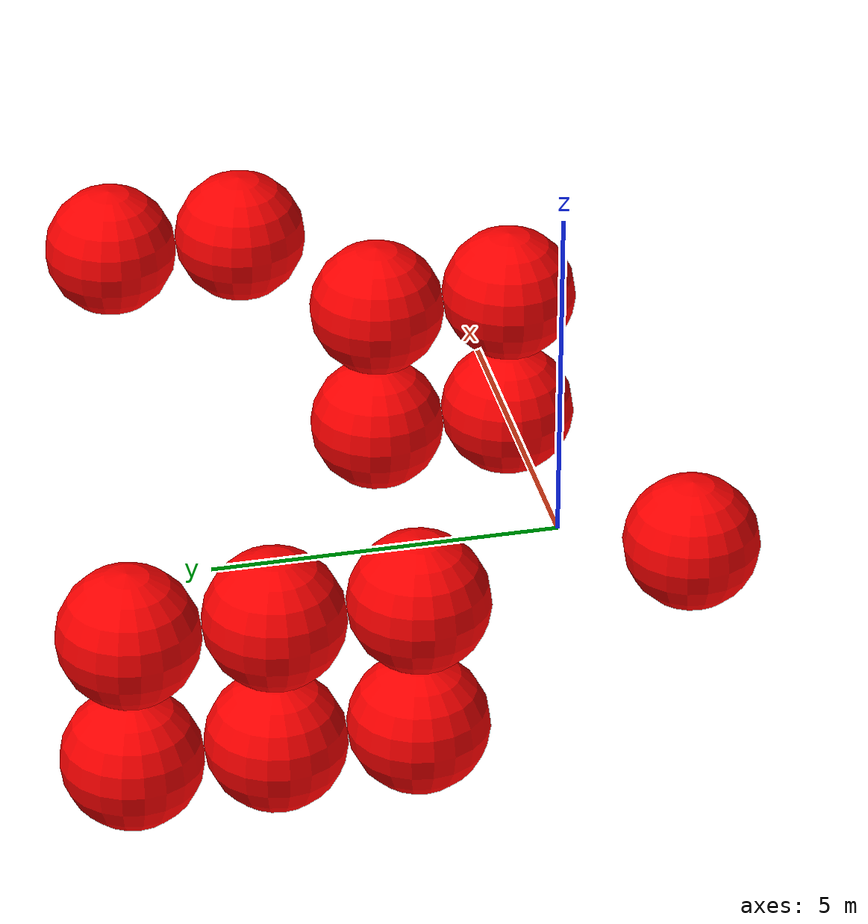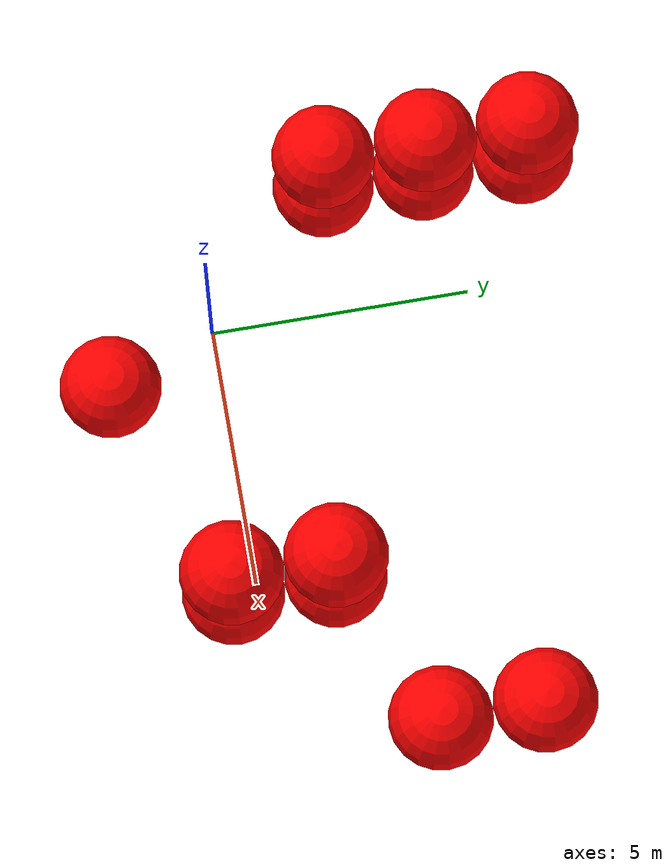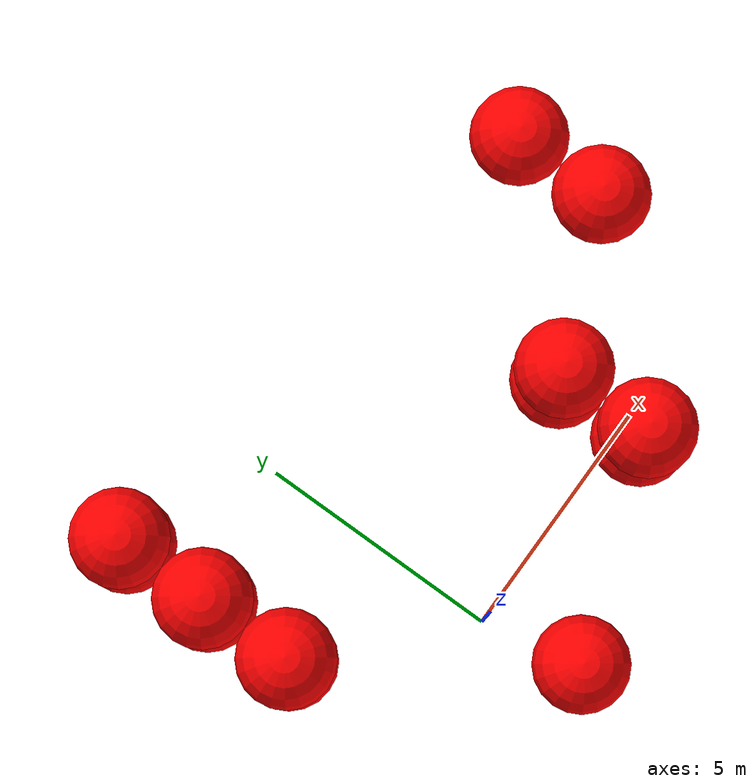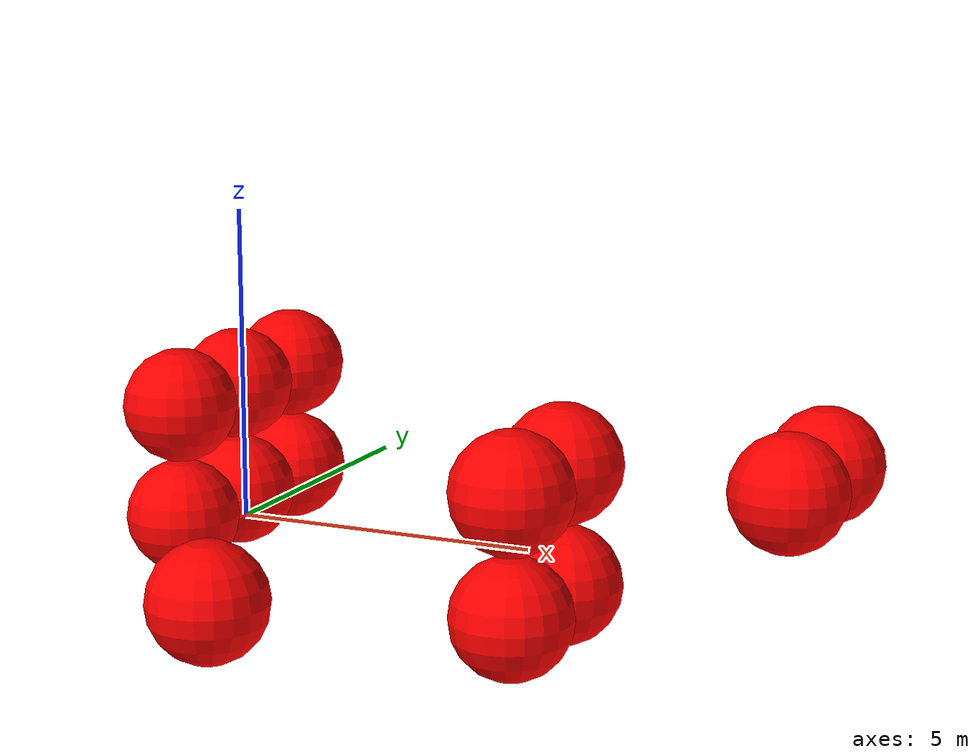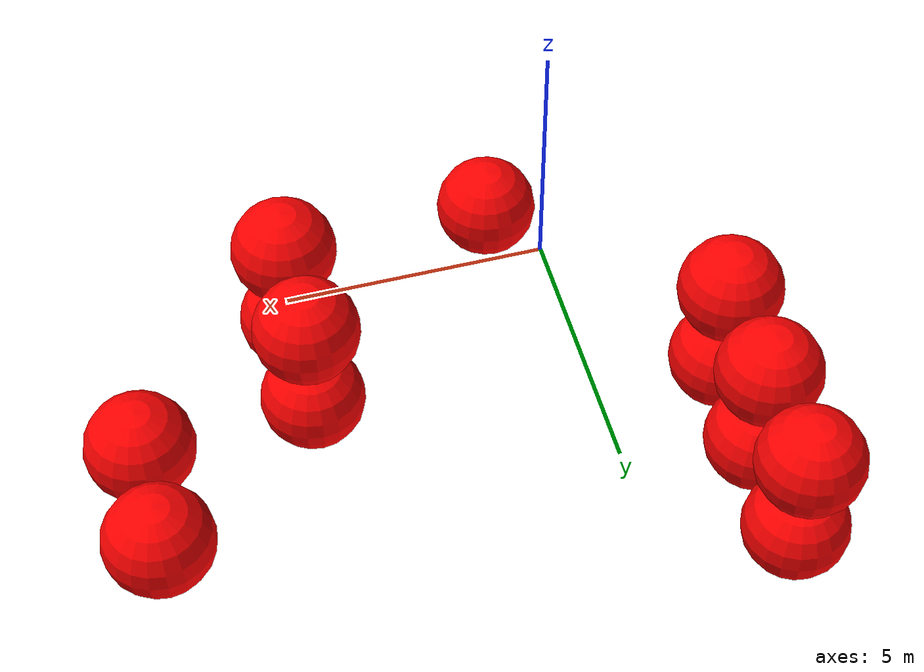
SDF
<sdf version="1.8">
 <world name="3d_world">
  <model name="obstacle_7" canonical_link="obstacle">
   <static>true</static>
   <pose relative_to="world">-2.85 2.66 -1.00 0 0 0</pose>
   <link name="obstacle">
    <pose relative_to="__model__">0.0 0 0.0 0 0 0</pose>
    <visual name="visual">
     <geometry><sphere><radius>1.00</radius></sphere></geometry>
     <material>
      <ambient>1.0 0.0 0.0 1</ambient>
      <diffuse>1.0 0.0 0.0 1</diffuse>
      <specular>1.0 0.0 0.0 1</specular>
     </material>
    </visual>
    <collision name="collision"><geometry><sphere><radius>1.00</radius></sphere></geometry></collision>
    <enable_gravity>false</enable_gravity>
   </link>
   <plugin filename="ignition-gazebo-velocity-control-system" name="ignition::gazebo::systems::VelocityControl">
    <initial_linear>0.00 0.00 0.00</initial_linear>
    <initial_angular>0 0 0</initial_angular>
   </plugin>
   <plugin filename="ignition-gazebo-odometry-publisher-system" name="ignition::gazebo::systems::OdometryPublisher">
    <dimensions>3</dimensions>
   </plugin>
  </model>
  <model name="obstacle_8" canonical_link="obstacle">
   <static>true</static>
   <pose relative_to="world">-2.85 4.66 -1.00 0 0 0</pose>
   <link name="obstacle">
    <pose relative_to="__model__">0.0 0 0.0 0 0 0</pose>
    <visual name="visual">
     <geometry><sphere><radius>1.00</radius></sphere></geometry>
     <material>
      <ambient>1.0 0.0 0.0 1</ambient>
      <diffuse>1.0 0.0 0.0 1</diffuse>
      <specular>1.0 0.0 0.0 1</specular>
     </material>
    </visual>
    <collision name="collision"><geometry><sphere><radius>1.00</radius></sphere></geometry></collision>
    <enable_gravity>false</enable_gravity>
   </link>
   <plugin filename="ignition-gazebo-velocity-control-system" name="ignition::gazebo::systems::VelocityControl">
    <initial_linear>0.00 0.00 0.00</initial_linear>
    <initial_angular>0 0 0</initial_angular>
   </plugin>
   <plugin filename="ignition-gazebo-odometry-publisher-system" name="ignition::gazebo::systems::OdometryPublisher">
    <dimensions>3</dimensions>
   </plugin>
  </model>
  <model name="obstacle_9" canonical_link="obstacle">
   <static>true</static>
   <pose relative_to="world">-2.85 6.66 -1.00 0 0 0</pose>
   <link name="obstacle">
    <pose relative_to="__model__">0.0 0 0.0 0 0 0</pose>
    <visual name="visual">
     <geometry><sphere><radius>1.00</radius></sphere></geometry>
     <material>
      <ambient>1.0 0.0 0.0 1</ambient>
      <diffuse>1.0 0.0 0.0 1</diffuse>
      <specular>1.0 0.0 0.0 1</specular>
     </material>
    </visual>
    <collision name="collision"><geometry><sphere><radius>1.00</radius></sphere></geometry></collision>
    <enable_gravity>false</enable_gravity>
   </link>
   <plugin filename="ignition-gazebo-velocity-control-system" name="ignition::gazebo::systems::VelocityControl">
    <initial_linear>0.00 0.00 0.00</initial_linear>
    <initial_angular>0 0 0</initial_angular>
   </plugin>
   <plugin filename="ignition-gazebo-odometry-publisher-system" name="ignition::gazebo::systems::OdometryPublisher">
    <dimensions>3</dimensions>
   </plugin>
  </model>
  <model name="obstacle_10" canonical_link="obstacle">
   <static>true</static>
   <pose relative_to="world">-2.85 2.66 1.00 0 0 0</pose>
   <link name="obstacle">
    <pose relative_to="__model__">0.0 0 0.0 0 0 0</pose>
    <visual name="visual">
     <geometry><sphere><radius>1.00</radius></sphere></geometry>
     <material>
      <ambient>1.0 0.0 0.0 1</ambient>
      <diffuse>1.0 0.0 0.0 1</diffuse>
      <specular>1.0 0.0 0.0 1</specular>
     </material>
    </visual>
    <collision name="collision"><geometry><sphere><radius>1.00</radius></sphere></geometry></collision>
    <enable_gravity>false</enable_gravity>
   </link>
   <plugin filename="ignition-gazebo-velocity-control-system" name="ignition::gazebo::systems::VelocityControl">
    <initial_linear>0.00 0.00 0.00</initial_linear>
    <initial_angular>0 0 0</initial_angular>
   </plugin>
   <plugin filename="ignition-gazebo-odometry-publisher-system" name="ignition::gazebo::systems::OdometryPublisher">
    <dimensions>3</dimensions>
   </plugin>
  </model>
  <model name="obstacle_11" canonical_link="obstacle">
   <static>true</static>
   <pose relative_to="world">-2.85 4.66 1.00 0 0 0</pose>
   <link name="obstacle">
    <pose relative_to="__model__">0.0 0 0.0 0 0 0</pose>
    <visual name="visual">
     <geometry><sphere><radius>1.00</radius></sphere></geometry>
     <material>
      <ambient>1.0 0.0 0.0 1</ambient>
      <diffuse>1.0 0.0 0.0 1</diffuse>
      <specular>1.0 0.0 0.0 1</specular>
     </material>
    </visual>
    <collision name="collision"><geometry><sphere><radius>1.00</radius></sphere></geometry></collision>
    <enable_gravity>false</enable_gravity>
   </link>
   <plugin filename="ignition-gazebo-velocity-control-system" name="ignition::gazebo::systems::VelocityControl">
    <initial_linear>0.00 0.00 0.00</initial_linear>
    <initial_angular>0 0 0</initial_angular>
   </plugin>
   <plugin filename="ignition-gazebo-odometry-publisher-system" name="ignition::gazebo::systems::OdometryPublisher">
    <dimensions>3</dimensions>
   </plugin>
  </model>
  <model name="obstacle_12" canonical_link="obstacle">
   <static>true</static>
   <pose relative_to="world">-2.85 6.66 1.00 0 0 0</pose>
   <link name="obstacle">
    <pose relative_to="__model__">0.0 0 0.0 0 0 0</pose>
    <visual name="visual">
     <geometry><sphere><radius>1.00</radius></sphere></geometry>
     <material>
      <ambient>1.0 0.0 0.0 1</ambient>
      <diffuse>1.0 0.0 0.0 1</diffuse>
      <specular>1.0 0.0 0.0 1</specular>
     </material>
    </visual>
    <collision name="collision"><geometry><sphere><radius>1.00</radius></sphere></geometry></collision>
    <enable_gravity>false</enable_gravity>
   </link>
   <plugin filename="ignition-gazebo-velocity-control-system" name="ignition::gazebo::systems::VelocityControl">
    <initial_linear>0.00 0.00 0.00</initial_linear>
    <initial_angular>0 0 0</initial_angular>
   </plugin>
   <plugin filename="ignition-gazebo-odometry-publisher-system" name="ignition::gazebo::systems::OdometryPublisher">
    <dimensions>3</dimensions>
   </plugin>
  </model>
  <model name="obstacle_13" canonical_link="obstacle">
   <static>true</static>
   <pose relative_to="world">4.91 -0.43 -1.00 0 0 0</pose>
   <link name="obstacle">
    <pose relative_to="__model__">0.0 0 0.0 0 0 0</pose>
    <visual name="visual">
     <geometry><sphere><radius>1.00</radius></sphere></geometry>
     <material>
      <ambient>1.0 0.0 0.0 1</ambient>
      <diffuse>1.0 0.0 0.0 1</diffuse>
      <specular>1.0 0.0 0.0 1</specular>
     </material>
    </visual>
    <collision name="collision"><geometry><sphere><radius>1.00</radius></sphere></geometry></collision>
    <enable_gravity>false</enable_gravity>
   </link>
   <plugin filename="ignition-gazebo-velocity-control-system" name="ignition::gazebo::systems::VelocityControl">
    <initial_linear>0.00 0.00 0.00</initial_linear>
    <initial_angular>0 0 0</initial_angular>
   </plugin>
   <plugin filename="ignition-gazebo-odometry-publisher-system" name="ignition::gazebo::systems::OdometryPublisher">
    <dimensions>3</dimensions>
   </plugin>
  </model>
  <model name="obstacle_14" canonical_link="obstacle">
   <static>true</static>
   <pose relative_to="world">4.91 1.57 -1.00 0 0 0</pose>
   <link name="obstacle">
    <pose relative_to="__model__">0.0 0 0.0 0 0 0</pose>
    <visual name="visual">
     <geometry><sphere><radius>1.00</radius></sphere></geometry>
     <material>
      <ambient>1.0 0.0 0.0 1</ambient>
      <diffuse>1.0 0.0 0.0 1</diffuse>
      <specular>1.0 0.0 0.0 1</specular>
     </material>
    </visual>
    <collision name="collision"><geometry><sphere><radius>1.00</radius></sphere></geometry></collision>
    <enable_gravity>false</enable_gravity>
   </link>
   <plugin filename="ignition-gazebo-velocity-control-system" name="ignition::gazebo::systems::VelocityControl">
    <initial_linear>0.00 0.00 0.00</initial_linear>
    <initial_angular>0 0 0</initial_angular>
   </plugin>
   <plugin filename="ignition-gazebo-odometry-publisher-system" name="ignition::gazebo::systems::OdometryPublisher">
    <dimensions>3</dimensions>
   </plugin>
  </model>
  <model name="obstacle_15" canonical_link="obstacle">
   <static>true</static>
   <pose relative_to="world">4.91 -0.43 1.00 0 0 0</pose>
   <link name="obstacle">
    <pose relative_to="__model__">0.0 0 0.0 0 0 0</pose>
    <visual name="visual">
     <geometry><sphere><radius>1.00</radius></sphere></geometry>
     <material>
      <ambient>1.0 0.0 0.0 1</ambient>
      <diffuse>1.0 0.0 0.0 1</diffuse>
      <specular>1.0 0.0 0.0 1</specular>
     </material>
    </visual>
    <collision name="collision"><geometry><sphere><radius>1.00</radius></sphere></geometry></collision>
    <enable_gravity>false</enable_gravity>
   </link>
   <plugin filename="ignition-gazebo-velocity-control-system" name="ignition::gazebo::systems::VelocityControl">
    <initial_linear>0.00 0.00 0.00</initial_linear>
    <initial_angular>0 0 0</initial_angular>
   </plugin>
   <plugin filename="ignition-gazebo-odometry-publisher-system" name="ignition::gazebo::systems::OdometryPublisher">
    <dimensions>3</dimensions>
   </plugin>
  </model>
  <model name="obstacle_16" canonical_link="obstacle">
   <static>true</static>
   <pose relative_to="world">4.91 1.57 1.00 0 0 0</pose>
   <link name="obstacle">
    <pose relative_to="__model__">0.0 0 0.0 0 0 0</pose>
    <visual name="visual">
     <geometry><sphere><radius>1.00</radius></sphere></geometry>
     <material>
      <ambient>1.0 0.0 0.0 1</ambient>
      <diffuse>1.0 0.0 0.0 1</diffuse>
      <specular>1.0 0.0 0.0 1</specular>
     </material>
    </visual>
    <collision name="collision"><geometry><sphere><radius>1.00</radius></sphere></geometry></collision>
    <enable_gravity>false</enable_gravity>
   </link>
   <plugin filename="ignition-gazebo-velocity-control-system" name="ignition::gazebo::systems::VelocityControl">
    <initial_linear>0.00 0.00 0.00</initial_linear>
    <initial_angular>0 0 0</initial_angular>
   </plugin>
   <plugin filename="ignition-gazebo-odometry-publisher-system" name="ignition::gazebo::systems::OdometryPublisher">
    <dimensions>3</dimensions>
   </plugin>
  </model>
  <model name="obstacle_23" canonical_link="obstacle">
   <static>false</static>
   <pose relative_to="world">8.23 2.99 0.53 0 0 0</pose>
   <link name="obstacle">
    <pose relative_to="__model__">0.0 0 0.0 0 0 0</pose>
    <visual name="visual">
     <geometry><sphere><radius>1.00</radius></sphere></geometry>
     <material>
      <ambient>1.0 0.0 0.0 1</ambient>
      <diffuse>1.0 0.0 0.0 1</diffuse>
      <specular>1.0 0.0 0.0 1</specular>
     </material>
    </visual>
    <collision name="collision"><geometry><sphere><radius>1.00</radius></sphere></geometry></collision>
    <enable_gravity>false</enable_gravity>
   </link>
   <plugin filename="ignition-gazebo-velocity-control-system" name="ignition::gazebo::systems::VelocityControl">
    <initial_linear>0.00 -1.02 -0.16</initial_linear>
    <initial_angular>0 0 0</initial_angular>
   </plugin>
   <plugin filename="ignition-gazebo-odometry-publisher-system" name="ignition::gazebo::systems::OdometryPublisher">
    <dimensions>3</dimensions>
   </plugin>
  </model>
  <model name="obstacle_24" canonical_link="obstacle">
   <static>false</static>
   <pose relative_to="world">8.23 4.99 0.53 0 0 0</pose>
   <link name="obstacle">
    <pose relative_to="__model__">0.0 0 0.0 0 0 0</pose>
    <visual name="visual">
     <geometry><sphere><radius>1.00</radius></sphere></geometry>
     <material>
      <ambient>1.0 0.0 0.0 1</ambient>
      <diffuse>1.0 0.0 0.0 1</diffuse>
      <specular>1.0 0.0 0.0 1</specular>
     </material>
    </visual>
    <collision name="collision"><geometry><sphere><radius>1.00</radius></sphere></geometry></collision>
    <enable_gravity>false</enable_gravity>
   </link>
   <plugin filename="ignition-gazebo-velocity-control-system" name="ignition::gazebo::systems::VelocityControl">
    <initial_linear>0.00 -1.02 -0.16</initial_linear>
    <initial_angular>0 0 0</initial_angular>
   </plugin>
   <plugin filename="ignition-gazebo-odometry-publisher-system" name="ignition::gazebo::systems::OdometryPublisher">
    <dimensions>3</dimensions>
   </plugin>
  </model>
  <model name="obstacle_25" canonical_link="obstacle">
   <static>false</static>
   <pose relative_to="world">0.50 -2.11 -0.83 0 0 0</pose>
   <link name="obstacle">
    <pose relative_to="__model__">0.0 0 0.0 0 0 0</pose>
    <visual name="visual">
     <geometry><sphere><radius>1.00</radius></sphere></geometry>
     <material>
      <ambient>1.0 0.0 0.0 1</ambient>
      <diffuse>1.0 0.0 0.0 1</diffuse>
      <specular>1.0 0.0 0.0 1</specular>
     </material>
    </visual>
    <collision name="collision"><geometry><sphere><radius>1.00</radius></sphere></geometry></collision>
    <enable_gravity>false</enable_gravity>
   </link>
   <plugin filename="ignition-gazebo-velocity-control-system" name="ignition::gazebo::systems::VelocityControl">
    <initial_linear>0.00 1.18 0.41</initial_linear>
    <initial_angular>0 0 0</initial_angular>
   </plugin>
   <plugin filename="ignition-gazebo-odometry-publisher-system" name="ignition::gazebo::systems::OdometryPublisher">
    <dimensions>3</dimensions>
   </plugin>
  </model>
 </world>
</sdf>
